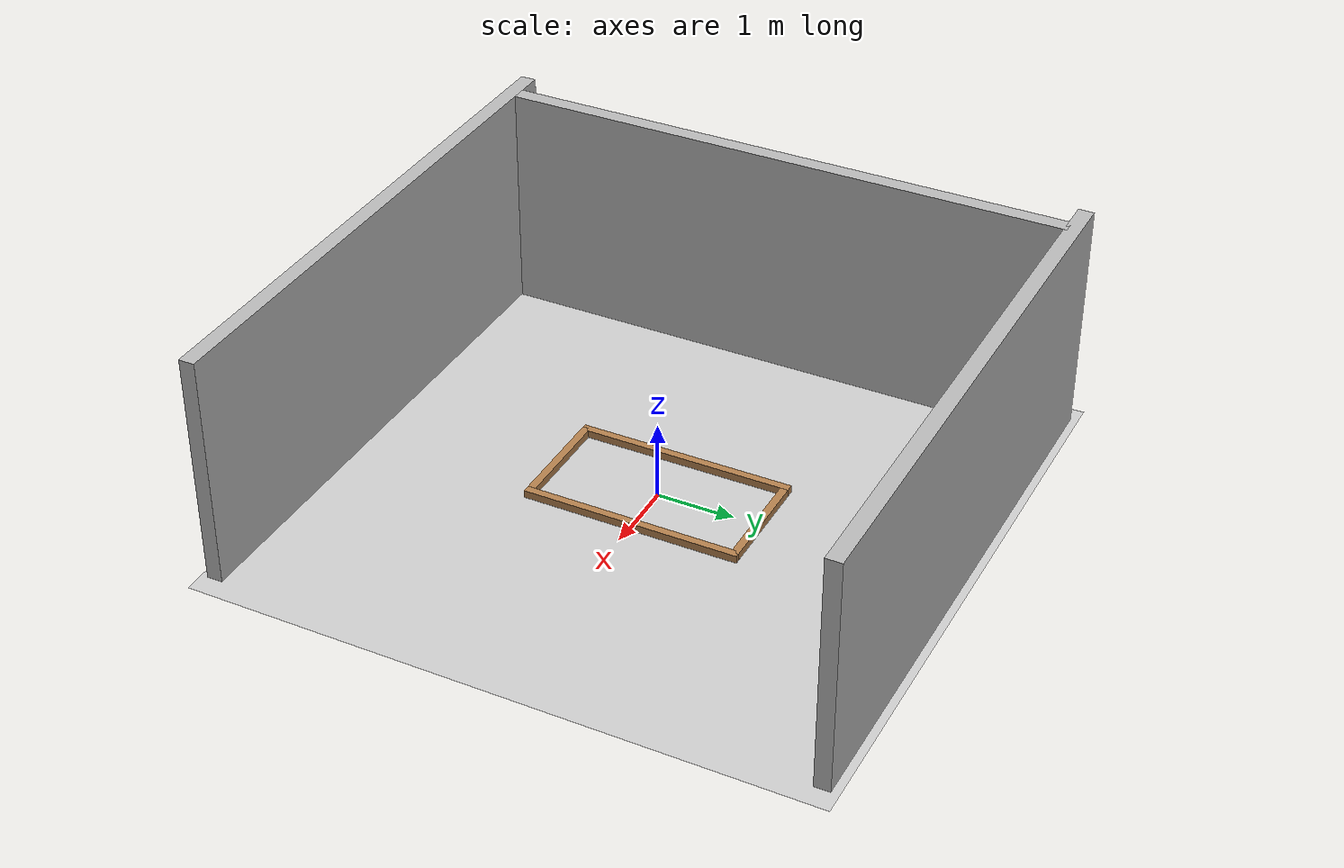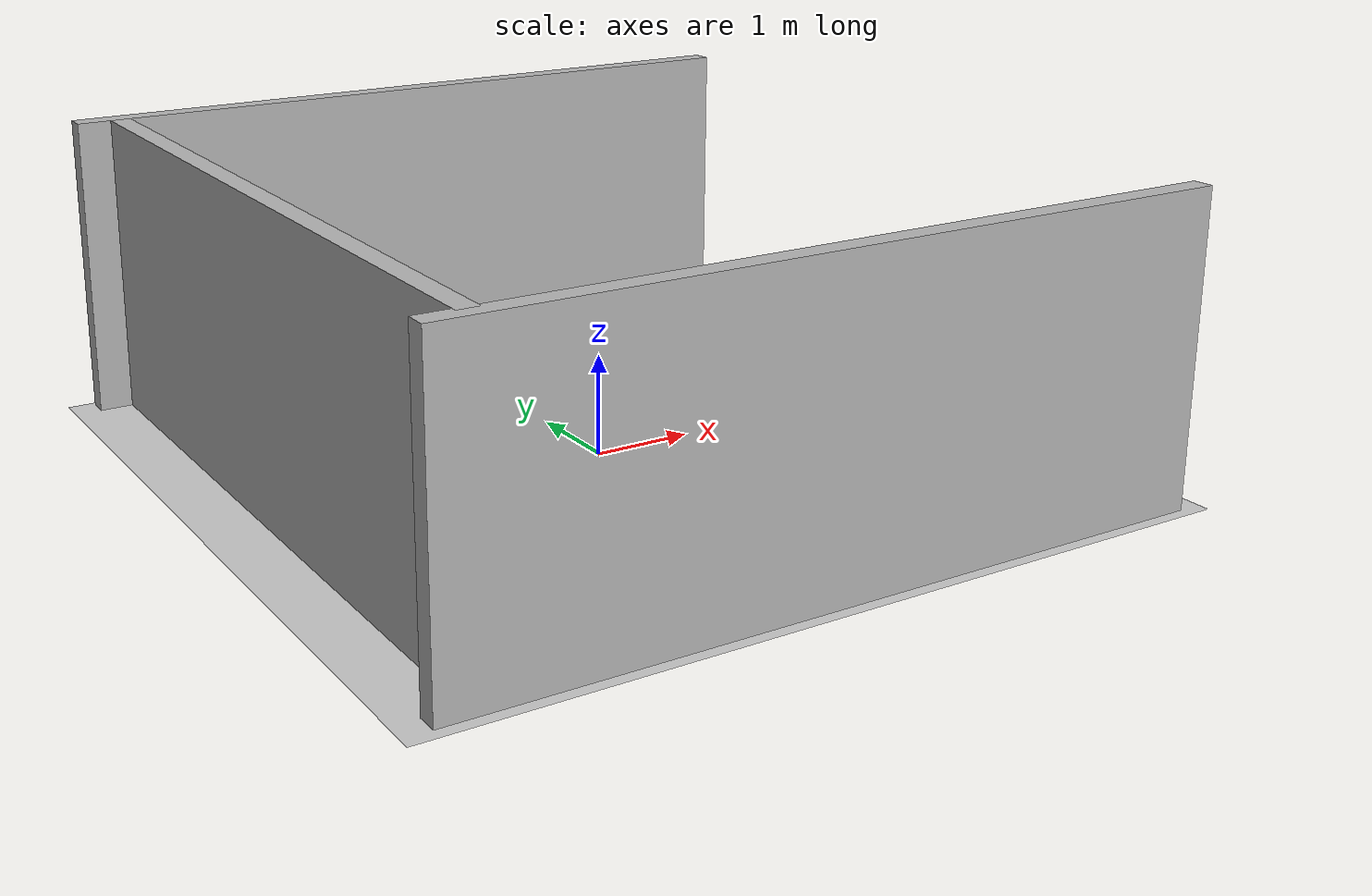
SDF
<sdf version="1.4">
 <world name="medium_track">
  <scene><ambient>0.8 0.8 0.8 1.0</ambient><shadows>0</shadows></scene>
  <include>
   <uri>model://sun</uri>
   <pose>0.0 0.0 15.0 0 0 0</pose>
   <cast_shadows>false</cast_shadows>
   <attenuation>
    <constant>0.5</constant>
    <linear>0.01</linear>
    <quadratic>0.0</quadratic>
    <range>100</range>
   </attenuation>
  </include>
  <light type="point" name="Light 1">
   <pose>0 0 15 0 0 0</pose>
   <diffuse>.9 .9 .9 1</diffuse>
   <specular>.1 .1 .1 1</specular>
   <attenuation>
    <constant>0.4</constant>
    <linear>0.0</linear>
    <quadratic>0.02</quadratic>
    <range>50</range>
   </attenuation>
   <direction>0 0 -1</direction>
   <cast_shadows>false</cast_shadows>
  </light>
  <light name="point_light_0" type="directional">
   <pose>0 0 1 1.57 0 0</pose>
   <diffuse>0.5 0.5 0.5 1</diffuse>
   <specular>0.02 0.02 0.02 1</specular>
   <attenuation>
    <range>20</range>
    <constant>0.5</constant>
    <linear>0.01</linear>
    <quadratic>0.001</quadratic>
   </attenuation>
   <cast_shadows>0</cast_shadows>
   <direction>0 0 -1</direction>
  </light>
  <light name="point_light_1" type="directional">
   <pose>0 0 1 1.57 0 1.57</pose>
   <diffuse>0.5 0.5 0.5 1</diffuse>
   <specular>0.02 0.02 0.02 1</specular>
   <attenuation>
    <range>20</range>
    <constant>0.5</constant>
    <linear>0.01</linear>
    <quadratic>0.001</quadratic>
   </attenuation>
   <cast_shadows>0</cast_shadows>
   <direction>0 0 -1</direction>
  </light>
  <light name="point_light_2" type="directional">
   <pose>0 0 1 1.57 0 3.14</pose>
   <diffuse>0.5 0.5 0.5 1</diffuse>
   <specular>0.02 0.02 0.02 1</specular>
   <attenuation>
    <range>20</range>
    <constant>0.5</constant>
    <linear>0.01</linear>
    <quadratic>0.001</quadratic>
   </attenuation>
   <cast_shadows>0</cast_shadows>
   <direction>0 0 -1</direction>
  </light>
  <light name="point_light_3" type="directional">
   <pose>0 0 1 1.57 0 -1.57</pose>
   <diffuse>0.5 0.5 0.5 1</diffuse>
   <specular>0.02 0.02 0.02 1</specular>
   <attenuation>
    <range>20</range>
    <constant>0.5</constant>
    <linear>0.01</linear>
    <quadratic>0.001</quadratic>
   </attenuation>
   <cast_shadows>0</cast_shadows>
   <direction>0 0 -1</direction>
  </light>
  <include><uri>model://sim_world/models//medium_track_plane_cherry</uri><name>racetrack</name></include>
  <include>
   <name>left_wall</name>
   <uri>model://sim_world/models/sakura_wall4</uri>
   <static>true</static>
   <pose>-3.32 0 0 0 0 0</pose>
  </include>
  <include>
   <name>upper_wall</name>
   <uri>model://sim_world/models/sakura_wall3</uri>
   <static>true</static>
   <pose>0 3.805 0 0 0 1.57</pose>
  </include>
  <include>
   <name>lower_wall</name>
   <uri>model://sim_world/models/sakura_wall5</uri>
   <static>true</static>
   <pose>0 -3.805 0 0 0 1.57</pose>
  </include>
  <include>
   <name>upper_wood</name>
   <uri>model://sim_world/models/wood_block_144_10_10cm</uri>
   <static>true</static>
   <pose>0 1.36 0 0 0 0</pose>
  </include>
  <include>
   <name>lower_wood</name>
   <uri>model://sim_world/models/wood_block_144_10_10cm</uri>
   <static>true</static>
   <pose>0 -1.36 0 0 0 0</pose>
  </include>
  <include>
   <name>right_wood</name>
   <uri>model://sim_world/models/wood_block_282_10_10cm</uri>
   <static>true</static>
   <pose>0.72 0 0 0 0 0</pose>
  </include>
  <include>
   <name>left_wood</name>
   <uri>model://sim_world/models/wood_block_282_10_10cm</uri>
   <static>true</static>
   <pose>-0.72 0 0 0 0 0</pose>
  </include>
 </world>
</sdf>

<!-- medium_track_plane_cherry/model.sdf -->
<sdf version="1.4">
<model name="medium_track">
  <static>true</static>
    <link name="link">
      <collision name="collision">
        <geometry>
          <plane>
            <normal>0 0 1</normal>
            <size>100 100</size>
          </plane>
        </geometry>
        <surface>
          <friction>
            <ode>
              <mu>100</mu>
              <mu2>50</mu2>
            </ode>
          </friction>
        </surface>
      </collision>
      <visual name="visual">
        <cast_shadows>false</cast_shadows>
        <geometry>
          <plane>
            <normal>0 0 1</normal>
            <size>8 8</size>
          </plane>
        </geometry>
        <material>
		  <script>
		    <uri>model://sim_world/meshes/medium_track_plane_cherry/scripts</uri>
            <uri>model://sim_world/meshes/medium_track_plane_cherry/textures</uri>
            <name>medium_track/Image</name>
		  </script>
        </material>
      </visual>
    </link>
  </model>
</sdf>

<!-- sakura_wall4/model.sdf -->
<sdf version="1.5">
  <model name="sakura_wall_4">
    <static>true</static>
    <link name="link">
      <pose>0 0 1.5 0 0 0</pose>
      <material>
        <ambient>1 0 0 1</ambient>
        <diffuse>0 0 0 1</diffuse>
        <specular>0 0 0 1</specular>
        <emissive>0 0 0 1</emissive>
      </material>
      <collision name="collision">
        <geometry>
          <box>
            <size>0.2 7.5 3</size>
          </box>
        </geometry>
      </collision>
      <visual name="visual">
        <cast_shadows>false</cast_shadows>
        <geometry>
          <box>
            <size>0.2 7.5 3</size>
          </box>
        </geometry>
        <material>
          <script>
            <uri>model://sim_world/models/sakura_wall/materials/scripts</uri>
            <uri>model://sim_world/models/sakura_wall/materials/textures</uri>
            <name>vrc/sakura_wall_4</name>
          </script>
        </material>
      </visual>
    </link>
  </model>
</sdf>

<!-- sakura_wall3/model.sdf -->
<sdf version="1.5">
  <model name="sakura_wall_3">
    <static>true</static>
    <link name="link">
      <pose>0 0 1.5 0 0 0</pose>
      <material>
        <ambient>1 0 0 1</ambient>
        <diffuse>0 0 0 1</diffuse>
        <specular>0 0 0 1</specular>
        <emissive>0 0 0 1</emissive>
      </material>
      <collision name="collision">
        <geometry>
          <box>
            <size>0.2 7.5 3</size>
          </box>
        </geometry>
      </collision>
      <visual name="visual">
        <cast_shadows>false</cast_shadows>
        <geometry>
          <box>
            <size>0.2 7.5 3</size>
          </box>
        </geometry>
        <material>
          <script>
            <uri>model://sim_world/models/sakura_wall/materials/scripts</uri>
            <uri>model://sim_world/models/sakura_wall/materials/textures</uri>
            <name>vrc/sakura_wall_3</name>
          </script>
        </material>
      </visual>
    </link>
  </model>
</sdf>

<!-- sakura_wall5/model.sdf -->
<sdf version="1.5">
  <model name="sakura_wall_5">
    <static>true</static>
    <link name="link">
      <pose>0 0 1.5 0 0 0</pose>
      <material>
        <ambient>1 0 0 1</ambient>
        <diffuse>0 0 0 1</diffuse>
        <specular>0 0 0 1</specular>
        <emissive>0 0 0 1</emissive>
      </material>
      <collision name="collision">
        <geometry>
          <box>
            <size>0.2 7.5 3</size>
          </box>
        </geometry>
      </collision>
      <visual name="visual">
        <cast_shadows>false</cast_shadows>
        <geometry>
          <box>
            <size>0.2 7.5 3</size>
          </box>
        </geometry>
        <material>
          <script>
            <uri>model://sim_world/models/sakura_wall/materials/scripts</uri>
            <uri>model://sim_world/models/sakura_wall/materials/textures</uri>
            <name>vrc/sakura_wall_5</name>
          </script>
        </material>
      </visual>
    </link>
  </model>
</sdf>

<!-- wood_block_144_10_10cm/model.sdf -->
<sdf version="1.5">
  <model name="wood_block_144_10_10cm">
    <link name="link">
      <pose>0 0 0.05 0 0 0</pose>

      <inertial>
        <mass>1000</mass>
      </inertial>

      <collision name="collision">
        <geometry>
          <box>
            <size>1.44 0.1 0.1</size>
          </box>
        </geometry>
        <surface>
          <contact>
            <!-- Red Pine coefficients for longitudinal axis of the wood
                 according to:
                 http://www.fpl.fs.fed.us/documnts/fplgtr/fplgtr113/ch04.pdf -->

            <poissons_ratio>0.347</poissons_ratio>
            <elastic_modulus>8.8e+09</elastic_modulus>
            <ode>
              <kp>100000</kp>
              <kd>1</kd>
              <max_vel>1.0</max_vel>
              <min_depth>0.001</min_depth>
            </ode>
          </contact>
          <friction>
            <torsional>
              <coefficient>1.0</coefficient>
              <use_patch_radius>0</use_patch_radius>
              <surface_radius>0.05</surface_radius>
            </torsional>
          </friction>
        </surface>
      </collision>

      <visual name="visual">
        <geometry>
          <box>
            <size>1.44 0.1 0.1</size>
          </box>
        </geometry>
        <material>
          <script>
            <uri>file://media/materials/scripts/gazebo.material</uri>
            <name>Gazebo/Wood</name>
          </script>
        </material>
      </visual>

    </link>
  </model>
</sdf>

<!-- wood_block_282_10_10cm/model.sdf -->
<sdf version="1.5">
  <model name="wood_block_282_10_10cm">
    <link name="link">
      <pose>0 0 0.05 0 0 0</pose>

      <inertial>
        <mass>1000</mass>
      </inertial>

      <collision name="collision">
        <geometry>
          <box>
            <size>0.1 2.82 0.1</size>
          </box>
        </geometry>
        <surface>
          <contact>
            <!-- Red Pine coefficients for longitudinal axis of the wood
                 according to:
                 http://www.fpl.fs.fed.us/documnts/fplgtr/fplgtr113/ch04.pdf -->

            <poissons_ratio>0.347</poissons_ratio>
            <elastic_modulus>8.8e+09</elastic_modulus>
            <ode>
              <kp>100000</kp>
              <kd>1</kd>
              <max_vel>1.0</max_vel>
              <min_depth>0.001</min_depth>
            </ode>
          </contact>
          <friction>
            <torsional>
              <coefficient>1.0</coefficient>
              <use_patch_radius>0</use_patch_radius>
              <surface_radius>0.05</surface_radius>
            </torsional>
          </friction>
        </surface>
      </collision>

      <visual name="visual">
        <geometry>
          <box>
            <size>0.1 2.82 0.1</size>
          </box>
        </geometry>
        <material>
          <script>
            <uri>file://media/materials/scripts/gazebo.material</uri>
            <name>Gazebo/Wood</name>
          </script>
        </material>
      </visual>

    </link>
  </model>
</sdf>
